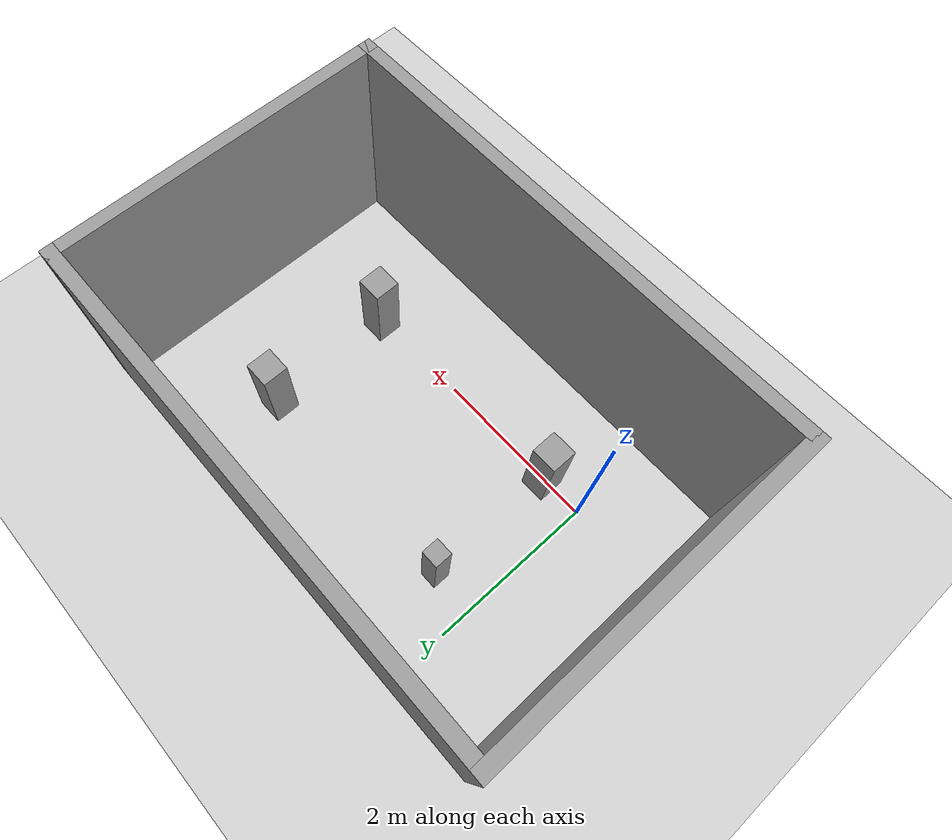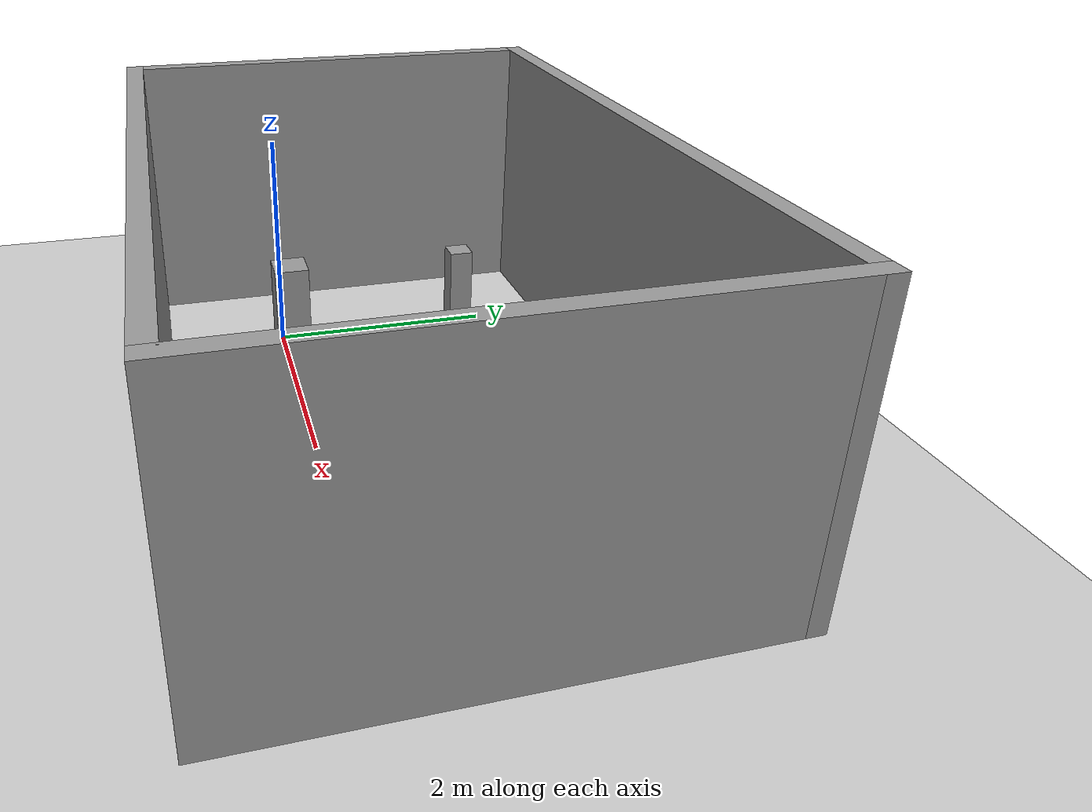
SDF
<sdf version="1.7">
 <world name="default">
  <light name="sun" type="directional">
   <pose>0 0 10 0 -0 0</pose>
   <diffuse>0.8 0.8 0.8 1</diffuse>
   <specular>0.2 0.2 0.2 1</specular>
   <attenuation>
    <range>1000</range>
    <constant>0.9</constant>
    <linear>0.01</linear>
    <quadratic>0.001</quadratic>
   </attenuation>
   <direction>-0.5 0.1 -0.9</direction>
   <spot><inner_angle>0</inner_angle><outer_angle>0</outer_angle><falloff>0</falloff></spot>
  </light>
  <model name="ground_plane">
   <static>1</static>
   <link name="link">
    <collision name="collision">
     <geometry><plane><normal>0 0 1</normal><size>100 100</size></plane></geometry>
     <surface>
      <contact><collide_bitmask>65535</collide_bitmask></contact>
      <friction><ode><mu>100</mu><mu2>50</mu2></ode></friction>
     </surface>
    </collision>
    <visual name="visual">
     <cast_shadows>0</cast_shadows>
     <geometry><plane><normal>0 0 1</normal><size>100 100</size></plane></geometry>
     <material>
      <script><uri>file://media/materials/scripts/gazebo.material</uri><name>Gazebo/Grey</name></script>
     </material>
    </visual>
   </link>
  </model>
  <gravity>0 0 -9.8</gravity>
  <magnetic_field>6e-06 2.3e-05 -4.2e-05</magnetic_field>
  <atmosphere type="adiabatic"/>
  <physics type="ode">
   <max_step_size>0.001</max_step_size>
   <real_time_factor>1</real_time_factor>
   <real_time_update_rate>1000</real_time_update_rate>
  </physics>
  <scene><ambient>0.4 0.4 0.4 1</ambient><background>0.7 0.7 0.7 1</background><shadows>1</shadows></scene>
  <spherical_coordinates>
   <surface_model>EARTH_WGS84</surface_model>
   <latitude_deg>0</latitude_deg>
   <longitude_deg>0</longitude_deg>
   <elevation>0</elevation>
   <heading_deg>0</heading_deg>
  </spherical_coordinates>
  <model name="Wall">
   <pose>1.825 0.775 0 0 -0 0</pose>
   <link name="Wall_20">
    <collision name="Wall_20_Collision">
     <geometry><box><size>4 0.15 2.5</size></box></geometry>
     <pose>0 0 1.25 0 -0 0</pose>
    </collision>
    <visual name="Wall_20_Visual">
     <pose>0 0 1.25 0 -0 0</pose>
     <geometry><box><size>4 0.15 2.5</size></box></geometry>
     <material>
      <script><uri>file://media/materials/scripts/gazebo.material</uri><name>Gazebo/Grey</name></script>
      <ambient>1 1 1 1</ambient>
     </material>
     <meta><layer>0</layer></meta>
    </visual>
    <pose>-2.925 0 0 0 -0 1.5708</pose>
   </link>
   <link name="Wall_22">
    <collision name="Wall_22_Collision">
     <geometry><box><size>6 0.15 2.5</size></box></geometry>
     <pose>0 0 1.25 0 -0 0</pose>
    </collision>
    <visual name="Wall_22_Visual">
     <pose>0 0 1.25 0 -0 0</pose>
     <geometry><box><size>6 0.15 2.5</size></box></geometry>
     <material>
      <script><uri>file://media/materials/scripts/gazebo.material</uri><name>Gazebo/Grey</name></script>
      <ambient>1 1 1 1</ambient>
     </material>
     <meta><layer>0</layer></meta>
    </visual>
    <pose>0 -1.925 0 0 -0 0</pose>
   </link>
   <link name="Wall_23">
    <collision name="Wall_23_Collision">
     <geometry><box><size>4 0.15 2.5</size></box></geometry>
     <pose>0 0 1.25 0 -0 0</pose>
    </collision>
    <visual name="Wall_23_Visual">
     <pose>0 0 1.25 0 -0 0</pose>
     <geometry><box><size>4 0.15 2.5</size></box></geometry>
     <material>
      <script><uri>file://media/materials/scripts/gazebo.material</uri><name>Gazebo/Grey</name></script>
      <ambient>1 1 1 1</ambient>
     </material>
     <meta><layer>0</layer></meta>
    </visual>
    <pose>2.925 0 0 0 -0 1.5708</pose>
   </link>
   <link name="Wall_24">
    <collision name="Wall_24_Collision">
     <geometry><box><size>6 0.15 2.5</size></box></geometry>
     <pose>0 0 1.25 0 -0 0</pose>
    </collision>
    <visual name="Wall_24_Visual">
     <pose>0 0 1.25 0 -0 0</pose>
     <geometry><box><size>6 0.15 2.5</size></box></geometry>
     <material>
      <script><uri>file://media/materials/scripts/gazebo.material</uri><name>Gazebo/Grey</name></script>
      <ambient>1 1 1 1</ambient>
     </material>
     <meta><layer>0</layer></meta>
    </visual>
    <pose>0 1.925 0 0 -0 3.14159</pose>
   </link>
   <static>1</static>
  </model>
  <model name="map_box">
   <link name="link">
    <inertial>
     <mass>0.925319</mass>
     <inertia>
      <ixx>0.108231</ixx>
      <ixy>0</ixy>
      <ixz>0</ixz>
      <iyy>0.240705</iyy>
      <iyz>0</iyz>
      <izz>0.194716</izz>
     </inertia>
    </inertial>
    <pose>0.53033 0.178429 -2e-06 0 -0 0</pose>
    <visual name="visual">
     <geometry><box><size>0.20657 0.205287 1</size></box></geometry>
     <material>
      <script><name>Gazebo/Grey</name><uri>file://media/materials/scripts/gazebo.material</uri></script>
      <shader type="pixel"/>
     </material>
    </visual>
    <collision name="collision">
     <geometry><box><size>0.20657 0.205287 1</size></box></geometry>
     <surface>
      <friction>
       <ode><mu>1</mu><mu2>1</mu2><fdir1>0 0 0</fdir1><slip1>0</slip1><slip2>0</slip2></ode>
       <torsional>
        <coefficient>1</coefficient>
        <patch_radius>0</patch_radius>
        <surface_radius>0</surface_radius>
        <use_patch_radius>1</use_patch_radius>
        <ode><slip>0</slip></ode>
       </torsional>
      </friction>
      <bounce><restitution_coefficient>0</restitution_coefficient><threshold>1e+06</threshold></bounce>
      <contact>
       <collide_without_contact>0</collide_without_contact>
       <collide_without_contact_bitmask>1</collide_without_contact_bitmask>
       <collide_bitmask>1</collide_bitmask>
       <ode>
        <soft_cfm>0</soft_cfm>
        <soft_erp>0.2</soft_erp>
        <kp>1e+13</kp>
        <kd>1</kd>
        <max_vel>0.01</max_vel>
        <min_depth>0</min_depth>
       </ode>
       <bullet>
        <split_impulse>1</split_impulse>
        <split_impulse_penetration_threshold>-0.01</split_impulse_penetration_threshold>
        <soft_cfm>0</soft_cfm>
        <soft_erp>0.2</soft_erp>
        <kp>1e+13</kp>
        <kd>1</kd>
       </bullet>
      </contact>
     </surface>
    </collision>
   </link>
   <link name="link_clone">
    <inertial>
     <mass>0.925319</mass>
     <inertia>
      <ixx>0.108231</ixx>
      <ixy>0</ixy>
      <ixz>0</ixz>
      <iyy>0.240705</iyy>
      <iyz>0</iyz>
      <izz>0.194716</izz>
     </inertia>
    </inertial>
    <pose>0.512818 -1.41807 1.2e-05 -1e-05 0 0</pose>
    <visual name="visual">
     <geometry><box><size>0.30657 0.305287 1</size></box></geometry>
     <material>
      <script><name>Gazebo/Grey</name><uri>file://media/materials/scripts/gazebo.material</uri></script>
      <shader type="pixel"/>
     </material>
    </visual>
    <collision name="collision">
     <geometry><box><size>0.30657 0.305287 1</size></box></geometry>
     <surface>
      <friction>
       <ode><mu>1</mu><mu2>1</mu2><fdir1>0 0 0</fdir1><slip1>0</slip1><slip2>0</slip2></ode>
       <torsional>
        <coefficient>1</coefficient>
        <patch_radius>0</patch_radius>
        <surface_radius>0</surface_radius>
        <use_patch_radius>1</use_patch_radius>
        <ode><slip>0</slip></ode>
       </torsional>
      </friction>
      <bounce><restitution_coefficient>0</restitution_coefficient><threshold>1e+06</threshold></bounce>
      <contact>
       <collide_without_contact>0</collide_without_contact>
       <collide_without_contact_bitmask>1</collide_without_contact_bitmask>
       <collide_bitmask>1</collide_bitmask>
       <ode>
        <soft_cfm>0</soft_cfm>
        <soft_erp>0.2</soft_erp>
        <kp>1e+13</kp>
        <kd>1</kd>
        <max_vel>0.01</max_vel>
        <min_depth>0</min_depth>
       </ode>
       <bullet>
        <split_impulse>1</split_impulse>
        <split_impulse_penetration_threshold>-0.01</split_impulse_penetration_threshold>
        <soft_cfm>0</soft_cfm>
        <soft_erp>0.2</soft_erp>
        <kp>1e+13</kp>
        <kd>1</kd>
       </bullet>
      </contact>
     </surface>
    </collision>
   </link>
   <link name="link_clone_clone">
    <inertial>
     <mass>0.925319</mass>
     <inertia>
      <ixx>0.108231</ixx>
      <ixy>0</ixy>
      <ixz>0</ixz>
      <iyy>0.240705</iyy>
      <iyz>0</iyz>
      <izz>0.194716</izz>
     </inertia>
    </inertial>
    <pose>3.21709 0.196869 1e-05 -2e-05 0 0</pose>
    <visual name="visual">
     <geometry><box><size>0.30657 0.305287 1</size></box></geometry>
     <material>
      <script><name>Gazebo/Grey</name><uri>file://media/materials/scripts/gazebo.material</uri></script>
      <shader type="pixel"/>
     </material>
    </visual>
    <collision name="collision">
     <geometry><box><size>0.30657 0.305287 1</size></box></geometry>
     <surface>
      <friction>
       <ode><mu>1</mu><mu2>1</mu2><fdir1>0 0 0</fdir1><slip1>0</slip1><slip2>0</slip2></ode>
       <torsional>
        <coefficient>1</coefficient>
        <patch_radius>0</patch_radius>
        <surface_radius>0</surface_radius>
        <use_patch_radius>1</use_patch_radius>
        <ode><slip>0</slip></ode>
       </torsional>
      </friction>
      <bounce><restitution_coefficient>0</restitution_coefficient><threshold>1e+06</threshold></bounce>
      <contact>
       <collide_without_contact>0</collide_without_contact>
       <collide_without_contact_bitmask>1</collide_without_contact_bitmask>
       <collide_bitmask>1</collide_bitmask>
       <ode>
        <soft_cfm>0</soft_cfm>
        <soft_erp>0.2</soft_erp>
        <kp>1e+13</kp>
        <kd>1</kd>
        <max_vel>0.01</max_vel>
        <min_depth>0</min_depth>
       </ode>
       <bullet>
        <split_impulse>1</split_impulse>
        <split_impulse_penetration_threshold>-0.01</split_impulse_penetration_threshold>
        <soft_cfm>0</soft_cfm>
        <soft_erp>0.2</soft_erp>
        <kp>1e+13</kp>
        <kd>1</kd>
       </bullet>
      </contact>
     </surface>
    </collision>
   </link>
   <link name="link_clone_clone_clone">
    <inertial>
     <mass>0.925319</mass>
     <inertia>
      <ixx>0.108231</ixx>
      <ixy>0</ixy>
      <ixz>0</ixz>
      <iyy>0.240705</iyy>
      <iyz>0</iyz>
      <izz>0.194716</izz>
     </inertia>
    </inertial>
    <pose>3.2248 -1.37647 2.3e-05 -3e-05 0 0</pose>
    <visual name="visual">
     <geometry><box><size>0.30657 0.305287 1</size></box></geometry>
     <material>
      <script><name>Gazebo/Grey</name><uri>file://media/materials/scripts/gazebo.material</uri></script>
      <shader type="pixel"/>
     </material>
    </visual>
    <collision name="collision">
     <geometry><box><size>0.30657 0.305287 1</size></box></geometry>
     <surface>
      <friction>
       <ode><mu>1</mu><mu2>1</mu2><fdir1>0 0 0</fdir1><slip1>0</slip1><slip2>0</slip2></ode>
       <torsional>
        <coefficient>1</coefficient>
        <patch_radius>0</patch_radius>
        <surface_radius>0</surface_radius>
        <use_patch_radius>1</use_patch_radius>
        <ode><slip>0</slip></ode>
       </torsional>
      </friction>
      <bounce><restitution_coefficient>0</restitution_coefficient><threshold>1e+06</threshold></bounce>
      <contact>
       <collide_without_contact>0</collide_without_contact>
       <collide_without_contact_bitmask>1</collide_without_contact_bitmask>
       <collide_bitmask>1</collide_bitmask>
       <ode>
        <soft_cfm>0</soft_cfm>
        <soft_erp>0.2</soft_erp>
        <kp>1e+13</kp>
        <kd>1</kd>
        <max_vel>0.01</max_vel>
        <min_depth>0</min_depth>
       </ode>
       <bullet>
        <split_impulse>1</split_impulse>
        <split_impulse_penetration_threshold>-0.01</split_impulse_penetration_threshold>
        <soft_cfm>0</soft_cfm>
        <soft_erp>0.2</soft_erp>
        <kp>1e+13</kp>
        <kd>1</kd>
       </bullet>
      </contact>
     </surface>
    </collision>
   </link>
   <static>0</static>
   <pose>0 1.45558 0.499995 1e-05 -0 0</pose>
  </model>
 </world>
</sdf>
